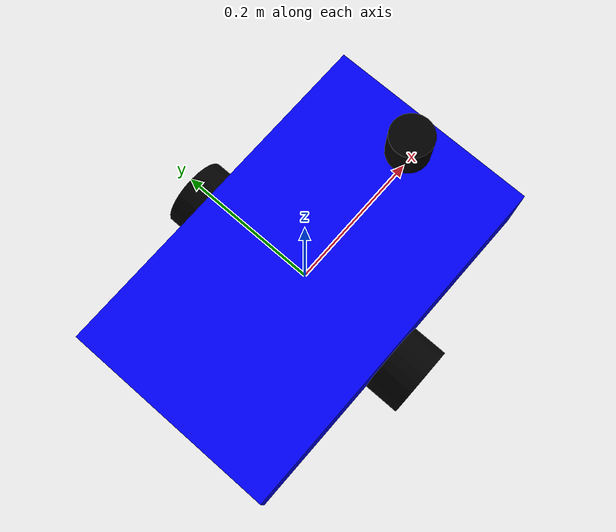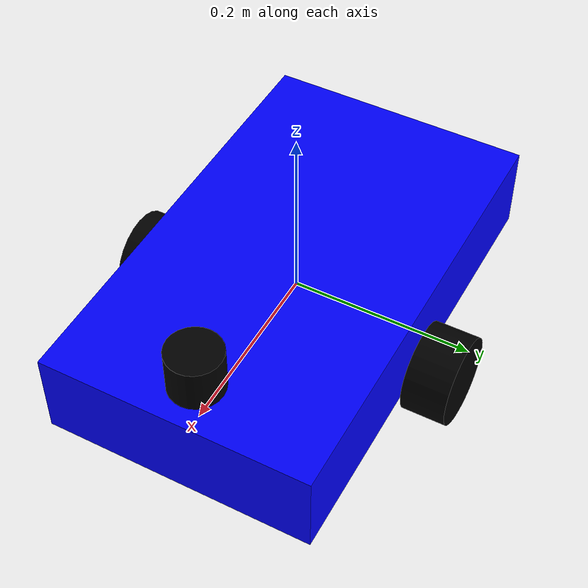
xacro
<?xml version="1.0"?>
<robot xmlns:xacro="http://www.ros.org/wiki/xacro" name="my_robot">

  <!-- MATERIALS -->
  <material name="blue"><color rgba="0 0 1 1"/></material>
  <material name="black"><color rgba="0 0 0 1"/></material>
  <material name="white"><color rgba="1 1 1 1"/></material>

  <!-- BASE LINK -->
  <link name="base_link">
    <visual>
      <geometry><box size="0.5 0.3 0.1"/></geometry>
      <material name="blue"/>
    </visual>
    <collision>
      <geometry><box size="0.5 0.3 0.1"/></geometry>
    </collision>
    <inertial>
      <mass value="1.0"/>
      <inertia ixx="0.01" ixy="0" ixz="0" iyy="0.01" iyz="0" izz="0.01"/>
    </inertial>
  </link>

  <!-- DRIVE WHEELS -->
  <xacro:macro name="wheel" params="name y_offset">
    <link name="${name}_wheel">
      <visual>
        <geometry><cylinder radius="0.05" length="0.05"/></geometry>
        <material name="black"/>
      </visual>
      <collision>
        <geometry><cylinder radius="0.05" length="0.05"/></geometry>
      </collision>
      <inertial>
        <mass value="0.1"/>
        <inertia ixx="0.001" ixy="0" ixz="0" iyy="0.001" iyz="0" izz="0.001"/>
      </inertial>
    </link>
    <joint name="${name}_wheel_joint" type="continuous">
      <parent link="base_link"/>
      <child link="${name}_wheel"/>
      <origin xyz="0 ${y_offset} -0.05" rpy="-1.5708 0 0"/>
      <axis xyz="0 0 1"/>
    </joint>
  </xacro:macro>

  <xacro:wheel name="left" y_offset="0.175"/>
  <xacro:wheel name="right" y_offset="-0.175"/>

  <!-- REAR CASTER -->
  <link name="rear_caster">
    <visual>
      <geometry><sphere radius="0.05"/></geometry>
      <material name="black"/>
    </visual>
    <collision>
      <geometry><sphere radius="0.05"/></geometry>
    </collision>
    <inertial>
      <mass value="0.05"/>
      <inertia ixx="0.0001" ixy="0" ixz="0" iyy="0.0001" iyz="0" izz="0.0001"/>
    </inertial>
  </link>
  <joint name="rear_caster_joint" type="fixed">
    <parent link="base_link"/>
    <child link="rear_caster"/>
    <origin xyz="-0.2 0 -0.05" rpy="0 0 0"/>
  </joint>

  <!-- LIDAR -->
  <link name="lidar_link">
    <visual>
      <geometry><cylinder radius="0.03" length="0.05"/></geometry>
      <material name="black"/>
    </visual>
    <collision>
      <geometry><cylinder radius="0.03" length="0.05"/></geometry>
    </collision>
    <inertial>
      <mass value="0.1"/>
      <inertia ixx="0.0001" ixy="0" ixz="0" iyy="0.0001" iyz="0" izz="0.0001"/>
    </inertial>
  </link>
  <joint name="lidar_joint" type="fixed">
    <parent link="base_link"/>
    <child link="lidar_link"/>
    <origin xyz="0.2 0 0.075" rpy="0 0 0"/>
  </joint>

  <!-- GAZEBO PHYSICS & PLUGINS -->
  <gazebo reference="rear_caster">
    <mu1 value="0.001"/>
    <mu2 value="0.001"/>
  </gazebo>

  <gazebo reference="lidar_link">
    <sensor name='gpu_lidar' type='gpu_lidar'>
      <pose>0 0 0 0 0 0</pose>
      <topic>scan</topic>
      <update_rate>10</update_rate>
      <ray>
        <scan>
          <horizontal>
            <samples>360</samples>
            <resolution>1</resolution>
            <min_angle>-3.14</min_angle>
            <max_angle>3.14</max_angle>
          </horizontal>
        </scan>
        <range>
          <min>0.12</min>
          <max>30.0</max>
          <resolution>0.01</resolution>
        </range>
      </ray>
      <always_on>1</always_on>
      <visualize>true</visualize>
    </sensor>
  </gazebo>

  <gazebo>
    <plugin filename="gz-sim-diff-drive-system" name="gz::sim::systems::DiffDrive">
      <left_joint>left_wheel_joint</left_joint>
      <right_joint>right_wheel_joint</right_joint>
      <wheel_separation>0.35</wheel_separation>
      <wheel_radius>0.05</wheel_radius>
      <topic>cmd_vel</topic>
      <odom_topic>odom</odom_topic>
      <tf_topic>tf</tf_topic>
      <frame_id>odom</frame_id>
      <child_frame_id>base_link</child_frame_id>
    </plugin>
    <plugin filename="gz-sim-joint-state-publisher-system" name="gz::sim::systems::JointStatePublisher"/>
  </gazebo>

</robot>
